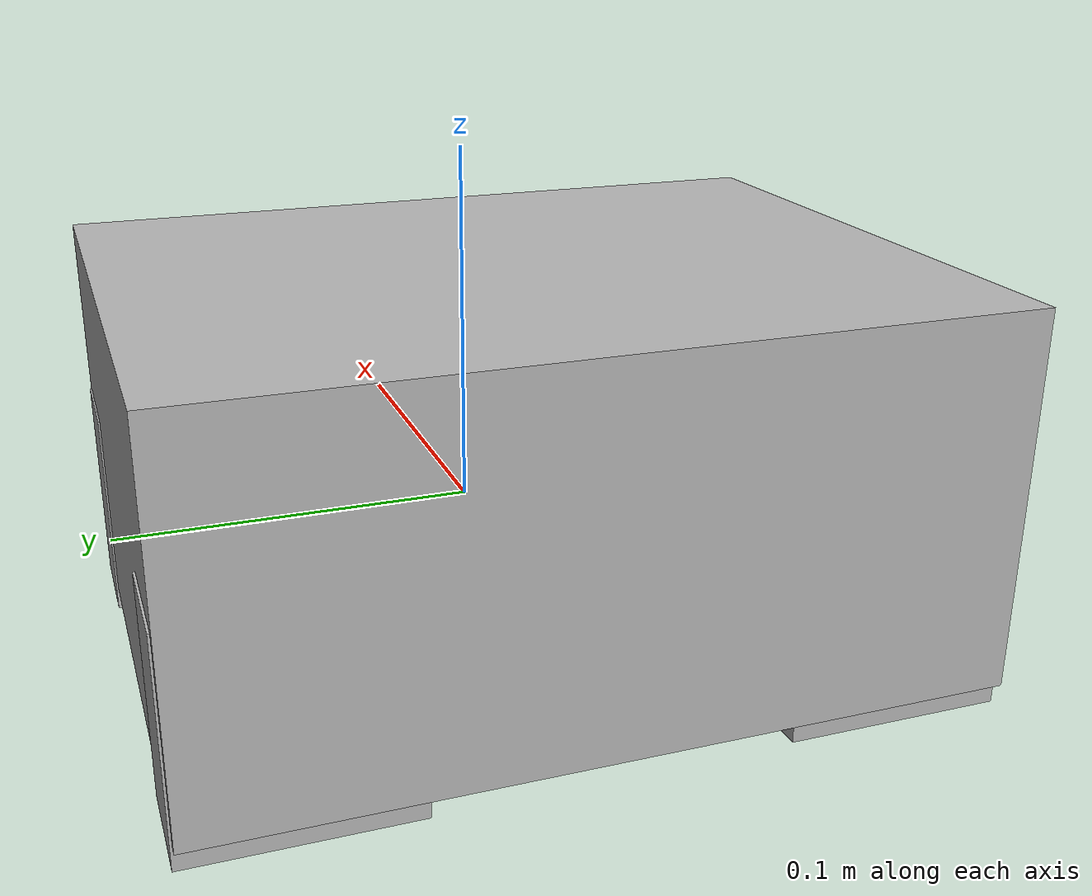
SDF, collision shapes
<?xml version="1.0" ?>
<sdf version="1.6">
  <model name="migbot2">
    <static>false</static>
    <link name="base_link">
      <pose>0 0 0 0 0 0</pose>
      <visual name="base_link_vis">
        <pose>0 0 0 0 0 0</pose>
        <geometry>
          <mesh>
            <uri>model://migbot2/meshes/base_link.dae</uri>
          </mesh>
        </geometry>
      </visual>
      <collision name="base_col">
        <pose>0.0034895427525043488 -0.015733987092971802 0.012140290811657906 0 0 0</pose>
        <geometry>
          <box>
            <size>0.17562101036310196 0.22589102387428284 0.10857900604605675</size>
          </box>
        </geometry>
      </collision>
      <inertial>
        <pose>0.0034895427525043488 -0.015733987092971802 0.012140290811657906 0 0 0</pose>
        <mass>0.387671</mass>
        <inertia>
          <ixx>0.002029</ixx>
          <ixy>0.0</ixy>
          <ixz>0.0</ixz>
          <iyy>0.001377</iyy>
          <iyz>0.0</iyz>
          <izz>0.002645</izz>
        </inertia>
      </inertial>
    </link>
    <link name="wheel2">
      <pose>-0.06593014299869537 0.06624943763017654 -0.017635000869631767 0.0 -0.0 0.0</pose>
      <visual name="wheel2_vis">
        <pose>0 0 0 0 0 0</pose>
        <geometry>
          <mesh>
            <uri>model://migbot2/meshes/wheel2.dae</uri>
          </mesh>
        </geometry>
      </visual>
      <collision name="wheel2_col">
        <pose>0.000691086232875171 0.00010715294393226493 -6.675720531923446e-09 0 0 0</pose>
        <geometry>
          <box>
            <size>0.03165030322070206 0.06300000299233943 0.06300000489968816</size>
          </box>
        </geometry>
      </collision>
      <inertial>
        <pose>0.000691086232875171 0.00010715294393226493 -6.675720531923446e-09 0 0 0</pose>
        <mass>0.011306</mass>
        <inertia>
          <ixx>0.000007</ixx>
          <ixy>0.0</ixy>
          <ixz>0.0</ixz>
          <iyy>0.000005</iyy>
          <iyz>0.0</iyz>
          <izz>0.000005</izz>
        </inertia>
      </inertial>
    </link>
    <joint name="wheel2_joint" type="fixed">
      <parent>base_link</parent>
      <child>wheel2</child>
      <pose>-0.06593014299869537 0.06624943763017654 -0.017635000869631767 0.0 -0.0 0.0</pose>
    </joint>
    <link name="wheel3">
      <pose>-0.06593000143766403 -0.09720829874277115 -0.017635000869631767 0.0 -0.0 0.0</pose>
      <visual name="wheel3_vis">
        <pose>0 0 0 0 0 0</pose>
        <geometry>
          <mesh>
            <uri>model://migbot2/meshes/wheel3.dae</uri>
          </mesh>
        </geometry>
      </visual>
      <collision name="wheel3_col">
        <pose>0.0006482181102334117 0.0 -2.861022752043141e-09 0 0 0</pose>
        <geometry>
          <box>
            <size>0.03150000164378408 0.06300000299233943 0.06300000138021966</size>
          </box>
        </geometry>
      </collision>
      <inertial>
        <pose>0.0006482181102334117 0.0 -2.861022752043141e-09 0 0 0</pose>
        <mass>0.011252</mass>
        <inertia>
          <ixx>0.000007</ixx>
          <ixy>0.0</ixy>
          <ixz>0.0</ixz>
          <iyy>0.000005</iyy>
          <iyz>0.0</iyz>
          <izz>0.000005</izz>
        </inertia>
      </inertial>
    </link>
    <joint name="wheel3_joint" type="fixed">
      <parent>base_link</parent>
      <child>wheel3</child>
      <pose>-0.06593000143766403 -0.09720829874277115 -0.017635000869631767 0.0 -0.0 0.0</pose>
    </joint>
    <link name="wheel4">
      <pose>0.07317300140857697 -0.09728100150823593 -0.017635000869631767 0.0 -0.0 0.0</pose>
      <visual name="wheel4_vis">
        <pose>0 0 0 0 0 0</pose>
        <geometry>
          <mesh>
            <uri>model://migbot2/meshes/wheel4.dae</uri>
          </mesh>
        </geometry>
      </visual>
      <collision name="wheel4_col">
        <pose>-0.0006496691040328018 0.0 2.893265960146607e-09 0 0 0</pose>
        <geometry>
          <box>
            <size>0.03157100099515142 0.06300000299233943 0.06370999612480444</size>
          </box>
        </geometry>
      </collision>
      <inertial>
        <pose>-0.0006496691040328018 0.0 2.893265960146607e-09 0 0 0</pose>
        <mass>0.011405</mass>
        <inertia>
          <ixx>0.000008</ixx>
          <ixy>0.0</ixy>
          <ixz>0.0</ixz>
          <iyy>0.000005</iyy>
          <iyz>0.0</iyz>
          <izz>0.000005</izz>
        </inertia>
      </inertial>
    </link>
    <joint name="wheel4_joint" type="fixed">
      <parent>base_link</parent>
      <child>wheel4</child>
      <pose>0.07317300140857697 -0.09728100150823593 -0.017635000869631767 0.0 -0.0 0.0</pose>
    </joint>
    <link name="wheel1">
      <pose>0.07317258417606354 0.06612101197242737 -0.01763458363711834 0.0 -0.0 0.0</pose>
      <visual name="wheel1_vis">
        <pose>0 0 0 0 0 0</pose>
        <geometry>
          <mesh>
            <uri>model://migbot2/meshes/wheel1.dae</uri>
          </mesh>
        </geometry>
      </visual>
      <collision name="wheel1_col">
        <pose>-0.0006482080966537795 0.00010726738485566933 2.8610230851100482e-09 0 0 0</pose>
        <geometry>
          <box>
            <size>0.03150000259745833 0.06300000299233943 0.06300000489968816</size>
          </box>
        </geometry>
      </collision>
      <inertial>
        <pose>-0.0006482080966537795 0.00010726738485566933 2.8610230851100482e-09 0 0 0</pose>
        <mass>0.011252</mass>
        <inertia>
          <ixx>0.000007</ixx>
          <ixy>0.0</ixy>
          <ixz>0.0</ixz>
          <iyy>0.000005</iyy>
          <iyz>0.0</iyz>
          <izz>0.000005</izz>
        </inertia>
      </inertial>
    </link>
    <joint name="wheel1_joint" type="fixed">
      <parent>base_link</parent>
      <child>wheel1</child>
      <pose>0.07317258417606354 0.06612101197242737 -0.01763458363711834 0.0 -0.0 0.0</pose>
    </joint>
    <plugin name="motor1_model" filename="libgazebo_motor_model.so">
      <robotNamespace>migbot2</robotNamespace>
      <jointName>Engine_helice_1</jointName>
      <linkName>Helice_1</linkName>
      <turningDirection>cw</turningDirection>
      <timeConstantUp>0.0125</timeConstantUp>
      <timeConstantDown>0.025</timeConstantDown>
      <maxRotVelocity>110000</maxRotVelocity>
      <motorConstant>1e-02</motorConstant>
      <momentConstant>0.01</momentConstant>
      <commandSubTopic>/gazebo/command/motor_speed</commandSubTopic>
      <motorNumber>1</motorNumber>
      <rotorDragCoefficient>0.000806428</rotorDragCoefficient>
      <rollingMomentCoefficient>1e-06</rollingMomentCoefficient>
      <motorSpeedPubTopic>/motor_speed/1</motorSpeedPubTopic>
      <rotorVelocitySlowdownSim>1</rotorVelocitySlowdownSim>
    </plugin>
    <plugin name="motor2_model" filename="libgazebo_motor_model.so">
      <robotNamespace>migbot2</robotNamespace>
      <jointName>Engine_helice_2</jointName>
      <linkName>Helice_2</linkName>
      <turningDirection>cw</turningDirection>
      <timeConstantUp>0.0125</timeConstantUp>
      <timeConstantDown>0.025</timeConstantDown>
      <maxRotVelocity>110000</maxRotVelocity>
      <motorConstant>1e-02</motorConstant>
      <momentConstant>0.01</momentConstant>
      <commandSubTopic>/gazebo/command/motor_speed</commandSubTopic>
      <motorNumber>1</motorNumber>
      <rotorDragCoefficient>0.000806428</rotorDragCoefficient>
      <rollingMomentCoefficient>1e-06</rollingMomentCoefficient>
      <motorSpeedPubTopic>/motor_speed/2</motorSpeedPubTopic>
      <rotorVelocitySlowdownSim>1</rotorVelocitySlowdownSim>
    </plugin>
    <plugin name="motor3_model" filename="libgazebo_motor_model.so">
      <robotNamespace>migbot2</robotNamespace>
      <jointName>Engine_helice_3</jointName>
      <linkName>Helice_3</linkName>
      <turningDirection>ccw</turningDirection>
      <timeConstantUp>0.0125</timeConstantUp>
      <timeConstantDown>0.025</timeConstantDown>
      <maxRotVelocity>110000</maxRotVelocity>
      <motorConstant>1e-02</motorConstant>
      <momentConstant>0.01</momentConstant>
      <commandSubTopic>/gazebo/command/motor_speed</commandSubTopic>
      <motorNumber>1</motorNumber>
      <rotorDragCoefficient>0.000806428</rotorDragCoefficient>
      <rollingMomentCoefficient>1e-06</rollingMomentCoefficient>
      <motorSpeedPubTopic>/motor_speed/3</motorSpeedPubTopic>
      <rotorVelocitySlowdownSim>1</rotorVelocitySlowdownSim>
    </plugin>
    <plugin name="motor4_model" filename="libgazebo_motor_model.so">
      <robotNamespace>migbot2</robotNamespace>
      <jointName>Engine_helice_4</jointName>
      <linkName>Helice_4</linkName>
      <turningDirection>ccw</turningDirection>
      <timeConstantUp>0.0125</timeConstantUp>
      <timeConstantDown>0.025</timeConstantDown>
      <maxRotVelocity>110000</maxRotVelocity>
      <motorConstant>1e-02</motorConstant>
      <momentConstant>0.01</momentConstant>
      <commandSubTopic>/gazebo/command/motor_speed</commandSubTopic>
      <motorNumber>1</motorNumber>
      <rotorDragCoefficient>0.000806428</rotorDragCoefficient>
      <rollingMomentCoefficient>1e-06</rollingMomentCoefficient>
      <motorSpeedPubTopic>/motor_speed/4</motorSpeedPubTopic>
      <rotorVelocitySlowdownSim>1</rotorVelocitySlowdownSim>
    </plugin>
    <plugin name="motor5_model" filename="libgazebo_motor_model.so">
      <robotNamespace>migbot2</robotNamespace>
      <jointName>Engine_helice_5</jointName>
      <linkName>Helice_5</linkName>
      <turningDirection>cw</turningDirection>
      <timeConstantUp>0.0125</timeConstantUp>
      <timeConstantDown>0.025</timeConstantDown>
      <maxRotVelocity>110000</maxRotVelocity>
      <motorConstant>1e-02</motorConstant>
      <momentConstant>0.01</momentConstant>
      <commandSubTopic>/gazebo/command/motor_speed</commandSubTopic>
      <motorNumber>1</motorNumber>
      <rotorDragCoefficient>0.000806428</rotorDragCoefficient>
      <rollingMomentCoefficient>1e-06</rollingMomentCoefficient>
      <motorSpeedPubTopic>/motor_speed/5</motorSpeedPubTopic>
      <rotorVelocitySlowdownSim>1</rotorVelocitySlowdownSim>
    </plugin>
    <plugin name="motor6_model" filename="libgazebo_motor_model.so">
      <robotNamespace>migbot2</robotNamespace>
      <jointName>Engine_helice_6</jointName>
      <linkName>Helice_6</linkName>
      <turningDirection>ccw</turningDirection>
      <timeConstantUp>0.0125</timeConstantUp>
      <timeConstantDown>0.025</timeConstantDown>
      <maxRotVelocity>110000</maxRotVelocity>
      <motorConstant>1e-02</motorConstant>
      <momentConstant>0.01</momentConstant>
      <commandSubTopic>/gazebo/command/motor_speed</commandSubTopic>
      <motorNumber>1</motorNumber>
      <rotorDragCoefficient>0.000806428</rotorDragCoefficient>
      <rollingMomentCoefficient>1e-06</rollingMomentCoefficient>
      <motorSpeedPubTopic>/motor_speed/6</motorSpeedPubTopic>
      <rotorVelocitySlowdownSim>1</rotorVelocitySlowdownSim>
    </plugin>
    <plugin name="joint_state_publisher" filename="libgazebo_ros_joint_state_publisher.so">
      <robotNamespace>migbot2</robotNamespace>
      <jointName>Engine_helice_1,Engine_helice_2,Engine_helice_3,Engine_helice_4,Engine_helice_5,Engine_helice_6</jointName>
    </plugin>
    <link name="imu_link">
      <pose>0 0 0 0 0 0</pose>
      <inertial>
        <pose>0 0 0 0 0 0</pose>
        <mass>0.002</mass>
        <inertia>
          <ixx>0.00532259139</ixx>
          <ixy>0</ixy>
          <ixz>0</ixz>
          <iyy>0.00363239675</iyy>
          <iyz>-0.00067637070</iyz>
          <izz>0.00234468738</izz>
        </inertia>
      </inertial>
      <sensor name="imu_sensor" type="imu">
        <always_on>true</always_on>
        <update_rate>1000</update_rate>
        <visualize>true</visualize>
        <topic>__default_topic__</topic>
        <pose>0 0 0 3.141592653589793 0 0</pose>
        <plugin name="imu_plugin" filename="libgazebo_ros_imu_sensor.so">
          <topicName>imu_data</topicName>
          <bodyName>imu_link</bodyName>
          <updateRateHZ>10.0</updateRateHZ>
          <gaussianNoise>0.0</gaussianNoise>
          <xyzOffset>0 0 0</xyzOffset>
          <rpyOffset>0 0 0</rpyOffset>
          <frameName>imu_link</frameName>
          <initialOrientationAsReference>false</initialOrientationAsReference>
        </plugin>
      </sensor>
    </link>
    <joint name="imu_joint" type="revolute">
      <parent>base_link</parent>
      <child>imu_link</child>
      <pose>-0.01 0.002 0.082 0 0 0</pose>
      <axis>
        <xyz>1 0 0</xyz>
        <limit>
          <lower>0</lower>
          <upper>0</upper>
        </limit>
        <dynamics>
          <damping>0.7</damping>
          <friction>0</friction>
        </dynamics>
      </axis>
    </joint>
    <plugin name="quadrotor_imu_sim" filename="libhector_gazebo_ros_imu.so">
      <alwaysOn>true</alwaysOn>
      <updateRate>100.0</updateRate>
      <bodyName>base_link</bodyName>
      <topicName>/imu</topicName>
      <gaussianNoise>1.3e-5 1.3e-5 1.3e-5</gaussianNoise>
    </plugin>
    <plugin name="quadrotor_magnetic_sim" filename="libhector_gazebo_ros_magnetic.so">
      <alwaysOn>true</alwaysOn>
      <updateRate>100.0</updateRate>
      <referenceHeading>-90</referenceHeading>
      <declination>-13.9794</declination>
      <inclination>-2.0879</inclination>
      <bodyName>base_link</bodyName>
      <topicName>/magnetic</topicName>
      <magnitude>1000.0</magnitude>
      <offset>0 0 0</offset>
      <drift>0.0 0.0 0.0</drift>
      <gaussianNoise>1.3e-5 1.3e-5 1.3e-5</gaussianNoise>
    </plugin>
    <plugin name="quadrotor_gps_sim" filename="libhector_gazebo_ros_gps.so">
      <alwaysOn>true</alwaysOn>
      <updateRate>10.0</updateRate>
      <bodyName>base_link</bodyName>
      <topicName>/fix</topicName>
      <velocityTopicName>/fix_velocity</velocityTopicName>
      <drift>0.0 0.0 0.0</drift>
      <gaussianNoise>0.01 0.01 0.01</gaussianNoise>
      <velocityDrift>0 0 0</velocityDrift>
      <velocityGaussianNoise>0.01 0.01 0.01</velocityGaussianNoise>
      <referenceLatitude>-8.798638</referenceLatitude>
      <referenceLongitude>-63.952087</referenceLongitude>
      <referenceHeading>-90</referenceHeading>
      <referenceAltitude>58</referenceAltitude>
    </plugin>
    <link name="mag_link">
      <pose>0 0 0 0 0 0</pose>
      <inertial>
        <pose>0 0 0 3.141592653589793 0 0</pose>
        <mass>0.001</mass>
        <inertia>
          <ixx>1e-05</ixx>
          <ixy>0</ixy>
          <ixz>0</ixz>
          <iyy>1e-05</iyy>
          <iyz>0</iyz>
          <izz>1e-05</izz>
        </inertia>
      </inertial>
      <visual name="mag_vis">
        <pose>0 0 0 0 0 0</pose>
        <geometry>
          <box>
            <size>0.01 0.01 0.01</size>
          </box>
        </geometry>
      </visual>
      <collision name="mag_col">
        <pose>0 0 0 0 0 0</pose>
        <geometry>
          <box>
            <size>0.01 0.01 0.01</size>
          </box>
        </geometry>
      </collision>
    </link>
    <joint name="mag_joint" type="fixed">
      <parent>base_link</parent>
      <child>mag_link</child>
      <pose>0.1 0.1 0.1 0 0 0</pose>
    </joint>
    <plugin name="usv_dynamics_plugin" filename="libgazebo_usv_dynamics_plugin.so">
      <bodyName>base_link</bodyName>
      <waterLevel>-0.15</waterLevel>
      <waterDensity>1025.0</waterDensity>
      <xDotU>0.0</xDotU>
      <yDotV>0.0</yDotV>
      <nDotR>0.0</nDotR>
      <xU>31.3</xU>
      <xUU>42.4</xUU>
      <yV>40.0</yV>
      <yVV>0.0</yVV>
      <zW>480.0</zW>
      <kP>50.0</kP>
      <mQ>50.0</mQ>
      <nR>380.0</nR>
      <nRR>0.0</nRR>
      <hullRadius>10.6</hullRadius>
      <boatWidth>1.848</boatWidth>
      <boatLength>2.3</boatLength>
      <length_n>2</length_n>
      <wave_model>0</wave_model>
    </plugin>
    <plugin name="MigbotBuoyancyPlugin" filename="libbuoyancy_gazebo_plugin.so">
      <wave_model>0</wave_model>
      <fluid_density>1025.0</fluid_density>
      <fluid_level>0.0001</fluid_level>
      <linear_drag>1.0</linear_drag>
      <angular_drag>1.0</angular_drag>
      <buoyancy name="buoyancy_box">
        <link_name>base_link</link_name>
        <pose>0 0 0.1 0 0 0</pose>
        <geometry>
          <box>
            <size>0.2 0.1 0.05</size>
          </box>
        </geometry>
      </buoyancy>
    </plugin>
    <plugin name="MigbotFollowPlugin" filename="libfollow_plugin.so">
      <link_name>base_link</link_name>
      <loop_forever>1</loop_forever>
      <line>
        <direction>0</direction>
        <length>1</length>
        <force>0</force>
        <torque>0</torque>
      </line>
      <frame>world</frame>
    </plugin>
    <plugin name="arducopter_plugin" filename="libArduPilotPlugin.so">
      <fdm_addr>127.0.0.1</fdm_addr>
      <fdm_port_in>9002</fdm_port_in>
      <fdm_port_out>9003</fdm_port_out>
      <modelXYZToAirplaneXForwardZDown>0 0 0 3.141593 0 0</modelXYZToAirplaneXForwardZDown>
      <gazeboXYZToNED>0 0 0 3.141593 0 -1.57075</gazeboXYZToNED>
      <imuName>imu_sensor</imuName>
      <gpsName>gpssensor</gpsName>
      <magName>magsensor</magName>
      <connectionTimeoutMaxCount>50</connectionTimeoutMaxCount>
      <control channel="0">
        <type>EFFORT</type>
        <offset>0</offset>
        <p_gain>0.20</p_gain>
        <i_gain>0</i_gain>
        <d_gain>0</d_gain>
        <i_max>0</i_max>
        <i_min>0</i_min>
        <cmd_max>2.5</cmd_max>
        <cmd_min>-2.5</cmd_min>
        <jointName>Engine_helice_1</jointName>
        <multiplier>100</multiplier>
        <controlVelocitySlowdownSim>1</controlVelocitySlowdownSim>
      </control>
      <control channel="1">
        <type>EFFORT</type>
        <offset>0</offset>
        <p_gain>0.20</p_gain>
        <i_gain>0</i_gain>
        <d_gain>0</d_gain>
        <i_max>0</i_max>
        <i_min>0</i_min>
        <cmd_max>2.5</cmd_max>
        <cmd_min>-2.5</cmd_min>
        <jointName>Engine_helice_2</jointName>
        <multiplier>100</multiplier>
        <controlVelocitySlowdownSim>1</controlVelocitySlowdownSim>
      </control>
      <control channel="2">
        <type>EFFORT</type>
        <offset>0</offset>
        <p_gain>0.20</p_gain>
        <i_gain>0</i_gain>
        <d_gain>0</d_gain>
        <i_max>0</i_max>
        <i_min>0</i_min>
        <cmd_max>2.5</cmd_max>
        <cmd_min>-2.5</cmd_min>
        <jointName>Engine_helice_3</jointName>
        <multiplier>-100</multiplier>
        <controlVelocitySlowdownSim>1</controlVelocitySlowdownSim>
      </control>
      <control channel="3">
        <type>EFFORT</type>
        <offset>0</offset>
        <p_gain>0.20</p_gain>
        <i_gain>0</i_gain>
        <d_gain>0</d_gain>
        <i_max>0</i_max>
        <i_min>0</i_min>
        <cmd_max>2.5</cmd_max>
        <cmd_min>-2.5</cmd_min>
        <jointName>Engine_helice_4</jointName>
        <multiplier>-100</multiplier>
        <controlVelocitySlowdownSim>1</controlVelocitySlowdownSim>
      </control>
      <control channel="4">
        <type>EFFORT</type>
        <offset>0</offset>
        <p_gain>0.20</p_gain>
        <i_gain>0</i_gain>
        <d_gain>0</d_gain>
        <i_max>0</i_max>
        <i_min>0</i_min>
        <cmd_max>2.5</cmd_max>
        <cmd_min>-2.5</cmd_min>
        <jointName>Engine_helice_5</jointName>
        <multiplier>100</multiplier>
        <controlVelocitySlowdownSim>1</controlVelocitySlowdownSim>
      </control>
      <control channel="5">
        <type>EFFORT</type>
        <offset>0</offset>
        <p_gain>0.20</p_gain>
        <i_gain>0</i_gain>
        <d_gain>0</d_gain>
        <i_max>0</i_max>
        <i_min>0</i_min>
        <cmd_max>2.5</cmd_max>
        <cmd_min>-2.5</cmd_min>
        <jointName>Engine_helice_6</jointName>
        <multiplier>-100</multiplier>
        <controlVelocitySlowdownSim>1</controlVelocitySlowdownSim>
      </control>
    </plugin>
  </model>
</sdf>
